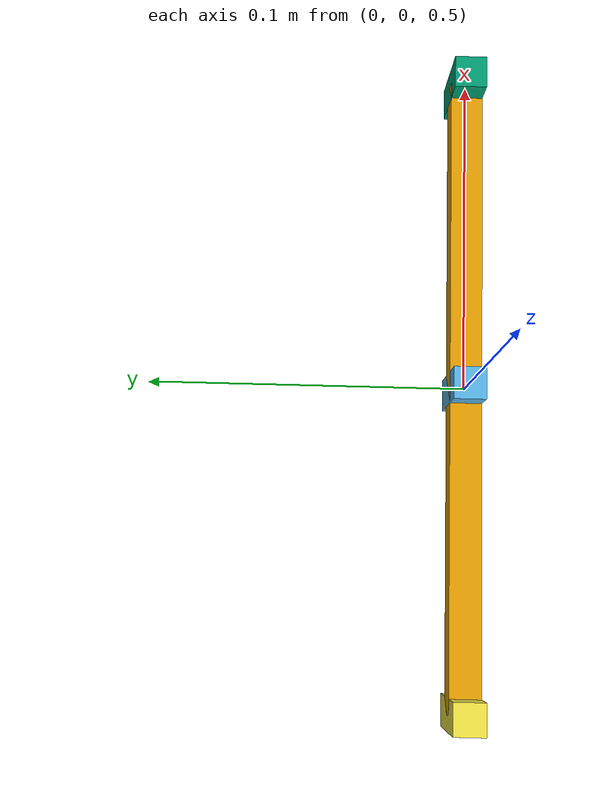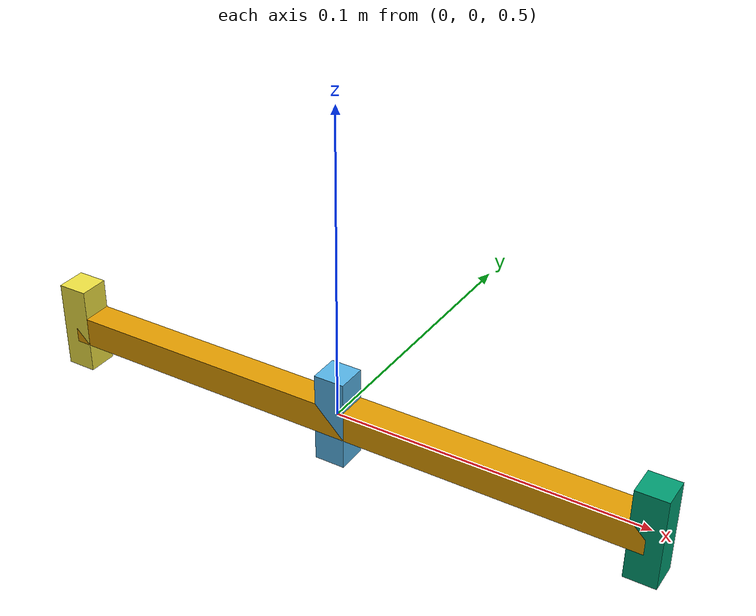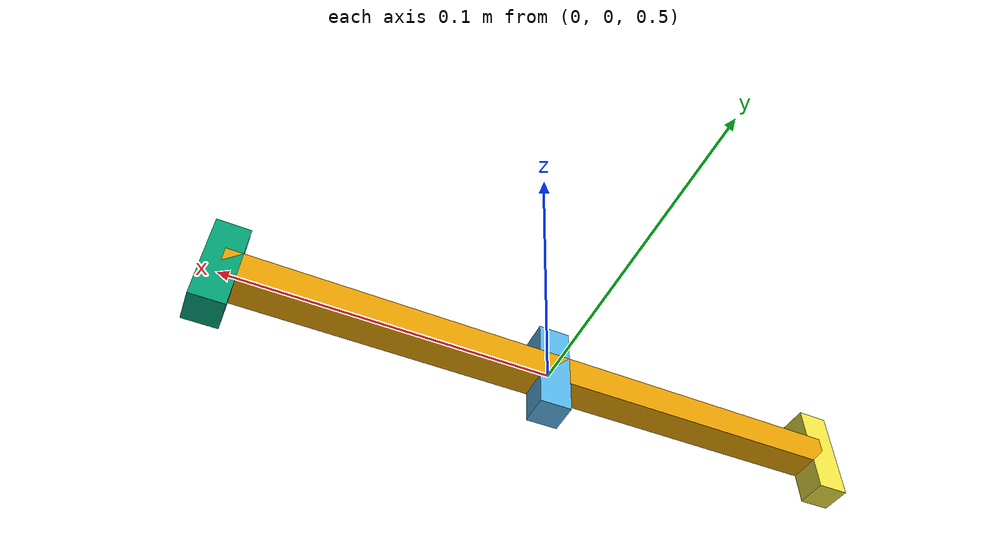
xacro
<?xml version="1.0" ?>
<robot name="simple_camera" xmlns:xacro="http://www.ros.org/wiki/xacro">
  <link name="camera_base">
    <visual>
      <origin xyz="0.0 0 0.5" rpy="0 0 0"/>
      <geometry>
        <box size="0.2 0.01 0.01"/>
      </geometry>
    </visual>
    <inertial>
      <mass value="1e-5" />
      <origin xyz="0.0 0 0.5" rpy="0 0 0"/>
      <inertia ixx="1e-6" ixy="0" ixz="0" iyy="1e-6" iyz="0" izz="1e-6" />
    </inertial>
  </link>

  <joint name="camera_joint" type="fixed">
      <parent link="camera_base"/>
      <child link="camera_link"/>
      <axis xyz="0 0 0" />
      <origin rpy="0.0 1.57 1.57" xyz="0.0 0.0 0.5"/>
  </joint>

  <link name="camera_link">
    <visual>
      <origin xyz="0 0 0" rpy="0 0 0"/>
      <geometry>
        <box size="0.03 0.01 0.01"/>
      </geometry>
    </visual>
    <inertial>
      <mass value="1e-5" />
      <origin xyz="0 0 0" rpy="0 0 0"/>
      <inertia ixx="1e-6" ixy="0" ixz="0" iyy="1e-6" iyz="0" izz="1e-6" />
    </inertial>
  </link>

   <joint name="imu_joint" type="fixed">
      <parent link="camera_base"/>
      <child link="imu_link"/>
      <axis xyz="0 0 0" />
      <origin rpy="0.0 1.57 1.57" xyz="0.1 0.0 0.5"/>
  </joint>

  <link name="imu_link">
    <visual>
      <origin xyz="0 0 0" rpy="0 0 0"/>
      <geometry>
        <box size="0.03 0.01 0.01"/>
      </geometry>
    </visual>
    <inertial>
      <mass value="1e-5" />
      <origin xyz="0 0 0" rpy="0 0 0"/>
      <inertia ixx="1e-6" ixy="0" ixz="0" iyy="1e-6" iyz="0" izz="1e-6" />
    </inertial>
  </link>

<joint name="box_joint" type="fixed">
      <parent link="camera_base"/>
      <child link="box_link"/>
      <axis xyz="0 0 0" />
      <origin rpy="0.0 1.57 1.57" xyz="-0.1 0.0 0.5"/>
  </joint>

  <link name="box_link">
    <visual>
      <origin xyz="0.0 0 0.0" rpy="0 0 0"/>
      <geometry>
        <box size="0.03 0.01 0.01"/>
      </geometry>
    </visual>
    <inertial>
      <mass value="1e-5" />
      <origin xyz="0 0 0" rpy="0 0 0"/>
      <inertia ixx="1e-6" ixy="0" ixz="0" iyy="1e-6" iyz="0" izz="1e-6" />
    </inertial>
  </link>

  <!-- camera simulator plug-in -->
  <gazebo reference="camera_link">
    <sensor type="camera" name="camera">
      <update_rate>30.0</update_rate>
      <camera name="camera">
        <horizontal_fov>0.6</horizontal_fov>
        <image>
          <width>640</width>
          <height>480</height>
          <format>R8G8B8</format>
        </image>
        <clip>
          <near>0.005</near>
          <far>0.9</far>
        </clip>
        <noise>
          <type>gaussian</type>
          <mean>0.0</mean>
          <stddev>0.0</stddev>
        </noise>
      </camera>
      <plugin name="camera_controller" filename="libgazebo_ros_camera.so">
        <alwaysOn>true</alwaysOn>
        <updateRate>0.0</updateRate>
        <cameraName>simple_camera</cameraName>
        <imageTopicName>image_raw</imageTopicName>
        <cameraInfoTopicName>camera_info</cameraInfoTopicName>
        <frameName>camera_link</frameName>
        <distortionK1>0.0</distortionK1>
        <distortionK2>0.0</distortionK2>
        <distortionK3>0.0</distortionK3>
        <distortionT1>0.0</distortionT1>
        <distortionT2>0.0</distortionT2>
      </plugin>
    </sensor>
  </gazebo>

<gazebo reference="imu_link">
    <gravity>true</gravity>
    <sensor name="imu_sensor" type="imu">
      <always_on>true</always_on>
      <update_rate>50</update_rate>
      <visualize>true</visualize>
      <topic>__default_topic__</topic>
      <plugin filename="libgazebo_ros_imu_sensor.so" name="imu_plugin">
        <topicName>imu</topicName>
        <bodyName>imu_link</bodyName>
        <updateRateHZ>50.0</updateRateHZ>
        <topicName>imu_2</topicName>
            <angular_velocity>
                <x>
                    <noise type="gaussian">
                        <mean>0</mean>
                        <stddev>0.0003394</stddev>
                        <dynamic_bias_stddev>0.000038785</dynamic_bias_stddev>
                    </noise>
                </x>
                <y>
                    <noise type="gaussian">
                        <mean>0</mean>
                        <stddev>0.0003394</stddev>
                        <dynamic_bias_stddev>0.000038785</dynamic_bias_stddev>
                    </noise>
                </y>
                <z>
                    <noise type="gaussian">
                        <mean>0</mean>
                        <stddev>0.0003394</stddev>
                        <dynamic_bias_stddev>0.000038785</dynamic_bias_stddev>
                    </noise>
                </z>
            </angular_velocity>
            <linear_acceleration>
                <x>
                    <noise type="gaussian">
                        <mean>0</mean>
                        <stddev>0.004</stddev>
                        <dynamic_bias_stddev>0.006</dynamic_bias_stddev>
                    </noise>
                </x>
                <y>
                    <noise type="gaussian">
                        <mean>0</mean>
                        <stddev>0.004</stddev>
                        <dynamic_bias_stddev>0.006</dynamic_bias_stddev>
                    </noise>
                </y>
                <z>
                    <noise type="gaussian">
                        <mean>0</mean>
                        <stddev>0.004</stddev>
                        <dynamic_bias_stddev>0.006</dynamic_bias_stddev>
                    </noise>
                </z>
            </linear_acceleration>
        <gaussianNoise>0.0</gaussianNoise>
        <xyzOffset>0 0 0</xyzOffset>
        <rpyOffset>0 0 0</rpyOffset>
        <frameName>imu_link</frameName>
      </plugin>
      <pose>0 0 0 0 0 0</pose>
    </sensor>
  </gazebo>
   <!--another imu model-->
  <gazebo>
    <plugin filename="librotors_gazebo_imu_plugin.so" name="rotors_gazebo_imu_plugin">
      <!-- A good description of the IMU parameters can be found in the kalibr documentation:
           https://github.com/ethz-asl/kalibr/wiki/IMU-Noise-Model-and-Intrinsics -->
        <robotNamespace>firefly</robotNamespace> <!-- (string, required): ros namespace in which the messages are published -->
        <linkName>imu_link</linkName> <!-- (string, required): name of the body which holds the IMU sensor -->
        <imuTopic>imu_new</imuTopic> <!-- (string): name of the sensor output topic and prefix of service names (defaults to imu) -->
        <gyroscopeNoiseDensity>0.0003394</gyroscopeNoiseDensity> <!-- Gyroscope noise density (two-sided spectrum) [rad/s/sqrt(Hz)] -->
        <gyroscopeRandomWalk>0.000038785</gyroscopeRandomWalk> <!-- Gyroscope bias random walk [rad/s/s/sqrt(Hz)] -->
        <gyroscopeBiasCorrelationTime>1000.0</gyroscopeBiasCorrelationTime> <!-- Gyroscope bias correlation time constant [s] -->
        <gyroscopeTurnOnBiasSigma>0.0087</gyroscopeTurnOnBiasSigma> <!-- Gyroscope turn on bias standard deviation [rad/s] -->
        <accelerometerNoiseDensity>0.004</accelerometerNoiseDensity> <!-- Accelerometer noise density (two-sided spectrum) [m/s^2/sqrt(Hz)] -->
        <accelerometerRandomWalk>0.006</accelerometerRandomWalk> <!-- Accelerometer bias random walk. [m/s^2/s/sqrt(Hz)] -->
        <accelerometerBiasCorrelationTime>300.0</accelerometerBiasCorrelationTime> <!-- Accelerometer bias correlation time constant [s] -->
        <accelerometerTurnOnBiasSigma>0.1960</accelerometerTurnOnBiasSigma> <!-- Accelerometer turn on bias standard deviation [m/s^2] -->
      </plugin>
  </gazebo>
<gazebo reference="imu_link">
    <!--Modity gravity to be false-->
    <gravity>true</gravity>
    <sensor name="imu_sensor" type="imu">
        <pose>0 0 0 0 0 0</pose>
        <always_on>1</always_on>
        <update_rate>50</update_rate>
        <topic>__default_topic__</topic>
        <imu>
            <topicName>imu_2</topicName>
            <bodyName>imu_link_link</bodyName>
            <updateRateHZ>50.0</updateRateHZ>
            <frameName>imu_2</frameName>
            <angular_velocity>
                <x>
                    <noise type="gaussian">
                        <mean>0</mean>
                        <stddev>0.0003394</stddev>
                        <dynamic_bias_stddev>0.000038785</dynamic_bias_stddev>
                    </noise>
                </x>
                <y>
                    <noise type="gaussian">
                        <mean>0</mean>
                        <stddev>0.0003394</stddev>
                        <dynamic_bias_stddev>0.000038785</dynamic_bias_stddev>
                    </noise>
                </y>
                <z>
                    <noise type="gaussian">
                        <mean>0</mean>
                        <stddev>0.0003394</stddev>
                        <dynamic_bias_stddev>0.000038785</dynamic_bias_stddev>
                    </noise>
                </z>
            </angular_velocity>
            <linear_acceleration>
                <x>
                    <noise type="gaussian">
                        <mean>0</mean>
                        <stddev>0.004</stddev>
                        <dynamic_bias_stddev>0.006</dynamic_bias_stddev>
                    </noise>
                </x>
                <y>
                    <noise type="gaussian">
                        <mean>0</mean>
                        <stddev>0.004</stddev>
                        <dynamic_bias_stddev>0.006</dynamic_bias_stddev>
                    </noise>
                </y>
                <z>
                    <noise type="gaussian">
                        <mean>0</mean>
                        <stddev>0.004</stddev>
                        <dynamic_bias_stddev>0.006</dynamic_bias_stddev>
                    </noise>
                </z>
            </linear_acceleration>
        </imu>
      </sensor>
 </gazebo>
</robot>
